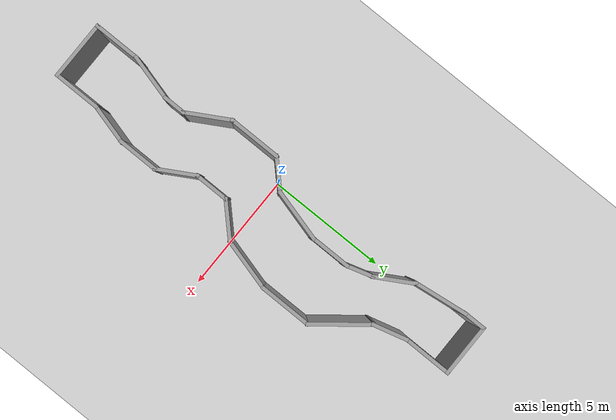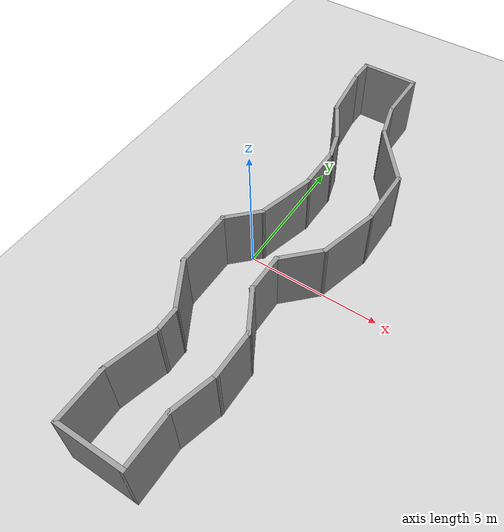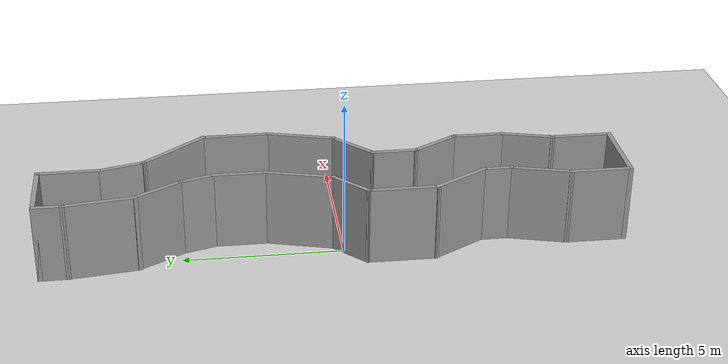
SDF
<sdf version="1.6">
 <world name="default">
  <light name="sun" type="directional">
   <pose>0 0 10 0 -0 0</pose>
   <diffuse>0.8 0.8 0.8 1</diffuse>
   <specular>0.2 0.2 0.2 1</specular>
   <attenuation>
    <range>1000</range>
    <constant>0.9</constant>
    <linear>0.01</linear>
    <quadratic>0.001</quadratic>
   </attenuation>
   <direction>-0.5 0.1 -0.9</direction>
  </light>
  <model name="ground_plane">
   <static>1</static>
   <link name="link">
    <collision name="collision">
     <geometry><plane><normal>0 0 1</normal><size>100 100</size></plane></geometry>
     <surface>
      <contact><collide_bitmask>65535</collide_bitmask></contact>
      <friction><ode><mu>100</mu><mu2>50</mu2></ode></friction>
     </surface>
    </collision>
    <visual name="visual">
     <cast_shadows>0</cast_shadows>
     <geometry><plane><normal>0 0 1</normal><size>100 100</size></plane></geometry>
     <material>
      <script><uri>file://media/materials/scripts/gazebo.material</uri><name>Gazebo/Grey</name></script>
     </material>
    </visual>
   </link>
  </model>
  <gravity>0 0 -9.8</gravity>
  <magnetic_field>6e-06 2.3e-05 -4.2e-05</magnetic_field>
  <atmosphere type="adiabatic"/>
  <physics name="default_physics" default="0" type="ode">
   <max_step_size>0.005</max_step_size>
   <real_time_factor>5</real_time_factor>
   <real_time_update_rate>5000</real_time_update_rate>
  </physics>
  <scene><ambient>0.4 0.4 0.4 1</ambient><background>0.7 0.7 0.7 1</background><shadows>1</shadows></scene>
  <audio><device>default</device></audio>
  <spherical_coordinates>
   <surface_model>EARTH_WGS84</surface_model>
   <latitude_deg>0</latitude_deg>
   <longitude_deg>0</longitude_deg>
   <elevation>0</elevation>
   <heading_deg>0</heading_deg>
  </spherical_coordinates>
  <model name="Untitled">
   <pose>1.35076 0.206749 0 0 -0 0</pose>
   <link name="Wall_0">
    <collision name="Wall_0_Collision">
     <geometry><box><size>2.5 0.15 2.5</size></box></geometry>
     <pose>0 0 1.25 0 -0 0</pose>
    </collision>
    <visual name="Wall_0_Visual">
     <pose>0 0 1.25 0 -0 0</pose>
     <geometry><box><size>2.5 0.15 2.5</size></box></geometry>
     <material>
      <script><uri>file://media/materials/scripts/gazebo.material</uri><name>Gazebo/Grey</name></script>
      <ambient>1 1 1 1</ambient>
     </material>
     <meta><layer>0</layer></meta>
    </visual>
    <pose>-0.42109 -9.06107 0 0 -0 0</pose>
   </link>
   <link name="Wall_10">
    <collision name="Wall_10_Collision">
     <geometry><box><size>1 0.15 2.5</size></box></geometry>
     <pose>0 0 1.25 0 -0 0</pose>
    </collision>
    <visual name="Wall_10_Visual">
     <pose>0 0 1.25 0 -0 0</pose>
     <geometry><box><size>1 0.15 2.5</size></box></geometry>
     <material>
      <script><uri>file://media/materials/scripts/gazebo.material</uri><name>Gazebo/Grey</name></script>
      <ambient>1 1 1 1</ambient>
     </material>
     <meta><layer>0</layer></meta>
    </visual>
    <pose>-1.11728 -4.99911 0 0 -0 1.5708</pose>
   </link>
   <link name="Wall_11">
    <collision name="Wall_11_Collision">
     <geometry><box><size>2 0.15 2.5</size></box></geometry>
     <pose>0 0 1.25 0 -0 0</pose>
    </collision>
    <visual name="Wall_11_Visual">
     <pose>0 0 1.25 0 -0 0</pose>
     <geometry><box><size>2 0.15 2.5</size></box></geometry>
     <material>
      <script><uri>file://media/materials/scripts/gazebo.material</uri><name>Gazebo/Grey</name></script>
      <ambient>1 1 1 1</ambient>
     </material>
     <meta><layer>0</layer></meta>
    </visual>
    <pose>-1.57977 -3.77304 0 0 -0 2.0944</pose>
   </link>
   <link name="Wall_12">
    <collision name="Wall_12_Collision">
     <geometry><box><size>2.25 0.15 2.5</size></box></geometry>
     <pose>0 0 1.25 0 -0 0</pose>
    </collision>
    <visual name="Wall_12_Visual">
     <pose>0 0 1.25 0 -0 0</pose>
     <geometry><box><size>2.25 0.15 2.5</size></box></geometry>
     <material>
      <script><uri>file://media/materials/scripts/gazebo.material</uri><name>Gazebo/Grey</name></script>
      <ambient>1 1 1 1</ambient>
     </material>
     <meta><layer>0</layer></meta>
    </visual>
    <pose>-2.04228 -1.92196 0 0 -0 1.5708</pose>
   </link>
   <link name="Wall_13">
    <collision name="Wall_13_Collision">
     <geometry><box><size>1.5 0.15 2.5</size></box></geometry>
     <pose>0 0 1.25 0 -0 0</pose>
    </collision>
    <visual name="Wall_13_Visual">
     <pose>0 0 1.25 0 -0 0</pose>
     <geometry><box><size>1.5 0.15 2.5</size></box></geometry>
     <material>
      <script><uri>file://media/materials/scripts/gazebo.material</uri><name>Gazebo/Grey</name></script>
      <ambient>1 1 1 1</ambient>
     </material>
     <meta><layer>0</layer></meta>
    </visual>
    <pose>-1.56498 -0.394667 0 0 -0 0.785398</pose>
   </link>
   <link name="Wall_15">
    <collision name="Wall_15_Collision">
     <geometry><box><size>1.5 0.15 2.5</size></box></geometry>
     <pose>0 0 1.25 0 -0 0</pose>
    </collision>
    <visual name="Wall_15_Visual">
     <pose>0 0 1.25 0 -0 0</pose>
     <geometry><box><size>1.5 0.15 2.5</size></box></geometry>
     <material>
      <script><uri>file://media/materials/scripts/gazebo.material</uri><name>Gazebo/Grey</name></script>
      <ambient>1 1 1 1</ambient>
     </material>
     <meta><layer>0</layer></meta>
    </visual>
    <pose>0.368021 -2.00495 0 0 -0 1.5708</pose>
   </link>
   <link name="Wall_16">
    <collision name="Wall_16_Collision">
     <geometry><box><size>1.75 0.15 2.5</size></box></geometry>
     <pose>0 0 1.25 0 -0 0</pose>
    </collision>
    <visual name="Wall_16_Visual">
     <pose>0 0 1.25 0 -0 0</pose>
     <geometry><box><size>1.75 0.15 2.5</size></box></geometry>
     <material>
      <script><uri>file://media/materials/scripts/gazebo.material</uri><name>Gazebo/Grey</name></script>
      <ambient>1 1 1 1</ambient>
     </material>
     <meta><layer>0</layer></meta>
    </visual>
    <pose>0.933706 -0.764267 0 0 -0 0.785398</pose>
   </link>
   <link name="Wall_17">
    <collision name="Wall_17_Collision">
     <geometry><box><size>2.25 0.15 2.5</size></box></geometry>
     <pose>0 0 1.25 0 -0 0</pose>
    </collision>
    <visual name="Wall_17_Visual">
     <pose>0 0 1.25 0 -0 0</pose>
     <geometry><box><size>2.25 0.15 2.5</size></box></geometry>
     <material>
      <script><uri>file://media/materials/scripts/gazebo.material</uri><name>Gazebo/Grey</name></script>
      <ambient>1 1 1 1</ambient>
     </material>
     <meta><layer>0</layer></meta>
    </visual>
    <pose>1.77115 0.815641 0 0 -0 1.309</pose>
   </link>
   <link name="Wall_19">
    <collision name="Wall_19_Collision">
     <geometry><box><size>2.25 0.15 2.5</size></box></geometry>
     <pose>0 0 1.25 0 -0 0</pose>
    </collision>
    <visual name="Wall_19_Visual">
     <pose>0 0 1.25 0 -0 0</pose>
     <geometry><box><size>2.25 0.15 2.5</size></box></geometry>
     <material>
      <script><uri>file://media/materials/scripts/gazebo.material</uri><name>Gazebo/Grey</name></script>
      <ambient>1 1 1 1</ambient>
     </material>
     <meta><layer>0</layer></meta>
    </visual>
    <pose>-0.815921 1.09685 0 0 -0 1.309</pose>
   </link>
   <link name="Wall_2">
    <collision name="Wall_2_Collision">
     <geometry><box><size>2 0.15 2.5</size></box></geometry>
     <pose>0 0 1.25 0 -0 0</pose>
    </collision>
    <visual name="Wall_2_Visual">
     <pose>0 0 1.25 0 -0 0</pose>
     <geometry><box><size>2 0.15 2.5</size></box></geometry>
     <material>
      <script><uri>file://media/materials/scripts/gazebo.material</uri><name>Gazebo/Grey</name></script>
      <ambient>1 1 1 1</ambient>
     </material>
     <meta><layer>0</layer></meta>
    </visual>
    <pose>-1.59609 -8.13607 0 0 -0 1.5708</pose>
   </link>
   <link name="Wall_20">
    <collision name="Wall_20_Collision">
     <geometry><box><size>1.75 0.15 2.5</size></box></geometry>
     <pose>0 0 1.25 0 -0 0</pose>
    </collision>
    <visual name="Wall_20_Visual">
     <pose>0 0 1.25 0 -0 0</pose>
     <geometry><box><size>1.75 0.15 2.5</size></box></geometry>
     <material>
      <script><uri>file://media/materials/scripts/gazebo.material</uri><name>Gazebo/Grey</name></script>
      <ambient>1 1 1 1</ambient>
     </material>
     <meta><layer>0</layer></meta>
    </visual>
    <pose>-0.544161 2.91107 0 0 -0 1.5708</pose>
   </link>
   <link name="Wall_21">
    <collision name="Wall_21_Collision">
     <geometry><box><size>1.19227 0.15 2.5</size></box></geometry>
     <pose>0 0 1.25 0 -0 0</pose>
    </collision>
    <visual name="Wall_21_Visual">
     <pose>0 0 1.25 0 -0 0</pose>
     <geometry><box><size>1.19227 0.15 2.5</size></box></geometry>
     <material>
      <script><uri>file://media/materials/scripts/gazebo.material</uri><name>Gazebo/Grey</name></script>
      <ambient>1 1 1 1</ambient>
     </material>
     <meta><layer>0</layer></meta>
    </visual>
    <pose>-0.692498 4.21065 0 0 -0 1.85943</pose>
   </link>
   <link name="Wall_23">
    <collision name="Wall_23_Collision">
     <geometry><box><size>2.25 0.15 2.5</size></box></geometry>
     <pose>0 0 1.25 0 -0 0</pose>
    </collision>
    <visual name="Wall_23_Visual">
     <pose>0 0 1.25 0 -0 0</pose>
     <geometry><box><size>2.25 0.15 2.5</size></box></geometry>
     <material>
      <script><uri>file://media/materials/scripts/gazebo.material</uri><name>Gazebo/Grey</name></script>
      <ambient>1 1 1 1</ambient>
     </material>
     <meta><layer>0</layer></meta>
    </visual>
    <pose>2.04291 2.87986 0 0 -0 1.5708</pose>
   </link>
   <link name="Wall_24">
    <collision name="Wall_24_Collision">
     <geometry><box><size>2.57949 0.15 2.5</size></box></geometry>
     <pose>0 0 1.25 0 -0 0</pose>
    </collision>
    <visual name="Wall_24_Visual">
     <pose>0 0 1.25 0 -0 0</pose>
     <geometry><box><size>2.57949 0.15 2.5</size></box></geometry>
     <material>
      <script><uri>file://media/materials/scripts/gazebo.material</uri><name>Gazebo/Grey</name></script>
      <ambient>1 1 1 1</ambient>
     </material>
     <meta><layer>0</layer></meta>
    </visual>
    <pose>1.28312 4.87766 0 0 -0 2.24653</pose>
   </link>
   <link name="Wall_25">
    <collision name="Wall_25_Collision">
     <geometry><box><size>1.5 0.15 2.5</size></box></geometry>
     <pose>0 0 1.25 0 -0 0</pose>
    </collision>
    <visual name="Wall_25_Visual">
     <pose>0 0 1.25 0 -0 0</pose>
     <geometry><box><size>1.5 0.15 2.5</size></box></geometry>
     <material>
      <script><uri>file://media/materials/scripts/gazebo.material</uri><name>Gazebo/Grey</name></script>
      <ambient>1 1 1 1</ambient>
     </material>
     <meta><layer>0</layer></meta>
    </visual>
    <pose>0.348632 6.47746 0 0 -0 1.8326</pose>
   </link>
   <link name="Wall_27">
    <collision name="Wall_27_Collision">
     <geometry><box><size>1.75 0.15 2.5</size></box></geometry>
     <pose>0 0 1.25 0 -0 0</pose>
    </collision>
    <visual name="Wall_27_Visual">
     <pose>0 0 1.25 0 -0 0</pose>
     <geometry><box><size>1.75 0.15 2.5</size></box></geometry>
     <material>
      <script><uri>file://media/materials/scripts/gazebo.material</uri><name>Gazebo/Grey</name></script>
      <ambient>1 1 1 1</ambient>
     </material>
     <meta><layer>0</layer></meta>
    </visual>
    <pose>-1.24083 5.40304 0 0 -0 2.0944</pose>
   </link>
   <link name="Wall_28">
    <collision name="Wall_28_Collision">
     <geometry><box><size>2.29793 0.15 2.5</size></box></geometry>
     <pose>0 0 1.25 0 -0 0</pose>
    </collision>
    <visual name="Wall_28_Visual">
     <pose>0 0 1.25 0 -0 0</pose>
     <geometry><box><size>2.29793 0.15 2.5</size></box></geometry>
     <material>
      <script><uri>file://media/materials/scripts/gazebo.material</uri><name>Gazebo/Grey</name></script>
      <ambient>1 1 1 1</ambient>
     </material>
     <meta><layer>0</layer></meta>
    </visual>
    <pose>-1.79292 7.14586 0 0 -0 1.6986</pose>
   </link>
   <link name="Wall_29">
    <collision name="Wall_29_Collision">
     <geometry><box><size>1 0.15 2.5</size></box></geometry>
     <pose>0 0 1.25 0 -0 0</pose>
    </collision>
    <visual name="Wall_29_Visual">
     <pose>0 0 1.25 0 -0 0</pose>
     <geometry><box><size>1 0.15 2.5</size></box></geometry>
     <material>
      <script><uri>file://media/materials/scripts/gazebo.material</uri><name>Gazebo/Grey</name></script>
      <ambient>1 1 1 1</ambient>
     </material>
     <meta><layer>0</layer></meta>
    </visual>
    <pose>-1.9298 8.63607 0 0 -0 1.5708</pose>
   </link>
   <link name="Wall_3">
    <collision name="Wall_3_Collision">
     <geometry><box><size>2 0.15 2.5</size></box></geometry>
     <pose>0 0 1.25 0 -0 0</pose>
    </collision>
    <visual name="Wall_3_Visual">
     <pose>0 0 1.25 0 -0 0</pose>
     <geometry><box><size>2 0.15 2.5</size></box></geometry>
     <material>
      <script><uri>file://media/materials/scripts/gazebo.material</uri><name>Gazebo/Grey</name></script>
      <ambient>1 1 1 1</ambient>
     </material>
     <meta><layer>0</layer></meta>
    </visual>
    <pose>-1.35668 -6.31759 0 0 -0 1.309</pose>
   </link>
   <link name="Wall_30">
    <collision name="Wall_30_Collision">
     <geometry><box><size>2.25 0.15 2.5</size></box></geometry>
     <pose>0 0 1.25 0 -0 0</pose>
    </collision>
    <visual name="Wall_30_Visual">
     <pose>0 0 1.25 0 -0 0</pose>
     <geometry><box><size>2.25 0.15 2.5</size></box></geometry>
     <material>
      <script><uri>file://media/materials/scripts/gazebo.material</uri><name>Gazebo/Grey</name></script>
      <ambient>1 1 1 1</ambient>
     </material>
     <meta><layer>0</layer></meta>
    </visual>
    <pose>-0.879801 9.06107 0 0 -0 0</pose>
   </link>
   <link name="Wall_31">
    <collision name="Wall_31_Collision">
     <geometry><box><size>2 0.15 2.5</size></box></geometry>
     <pose>0 0 1.25 0 -0 0</pose>
    </collision>
    <visual name="Wall_31_Visual">
     <pose>0 0 1.25 0 -0 0</pose>
     <geometry><box><size>2 0.15 2.5</size></box></geometry>
     <material>
      <script><uri>file://media/materials/scripts/gazebo.material</uri><name>Gazebo/Grey</name></script>
      <ambient>1 1 1 1</ambient>
     </material>
     <meta><layer>0</layer></meta>
    </visual>
    <pose>0.170199 8.13607 0 0 -0 -1.5708</pose>
   </link>
   <link name="Wall_5">
    <collision name="Wall_5_Collision">
     <geometry><box><size>2 0.15 2.5</size></box></geometry>
     <pose>0 0 1.25 0 -0 0</pose>
    </collision>
    <visual name="Wall_5_Visual">
     <pose>0 0 1.25 0 -0 0</pose>
     <geometry><box><size>2 0.15 2.5</size></box></geometry>
     <material>
      <script><uri>file://media/materials/scripts/gazebo.material</uri><name>Gazebo/Grey</name></script>
      <ambient>1 1 1 1</ambient>
     </material>
     <meta><layer>0</layer></meta>
    </visual>
    <pose>0.75391 -8.13607 0 0 -0 1.5708</pose>
   </link>
   <link name="Wall_6">
    <collision name="Wall_6_Collision">
     <geometry><box><size>1.75 0.15 2.5</size></box></geometry>
     <pose>0 0 1.25 0 -0 0</pose>
    </collision>
    <visual name="Wall_6_Visual">
     <pose>0 0 1.25 0 -0 0</pose>
     <geometry><box><size>1.75 0.15 2.5</size></box></geometry>
     <material>
      <script><uri>file://media/materials/scripts/gazebo.material</uri><name>Gazebo/Grey</name></script>
      <ambient>1 1 1 1</ambient>
     </material>
     <meta><layer>0</layer></meta>
    </visual>
    <pose>0.960965 -6.43833 0 0 -0 1.309</pose>
   </link>
   <link name="Wall_7">
    <collision name="Wall_7_Collision">
     <geometry><box><size>1.75 0.15 2.5</size></box></geometry>
     <pose>0 0 1.25 0 -0 0</pose>
    </collision>
    <visual name="Wall_7_Visual">
     <pose>0 0 1.25 0 -0 0</pose>
     <geometry><box><size>1.75 0.15 2.5</size></box></geometry>
     <material>
      <script><uri>file://media/materials/scripts/gazebo.material</uri><name>Gazebo/Grey</name></script>
      <ambient>1 1 1 1</ambient>
     </material>
     <meta><layer>0</layer></meta>
    </visual>
    <pose>1.16802 -4.86559 0 0 -0 1.5708</pose>
   </link>
   <link name="Wall_8">
    <collision name="Wall_8_Collision">
     <geometry><box><size>1.75 0.15 2.5</size></box></geometry>
     <pose>0 0 1.25 0 -0 0</pose>
    </collision>
    <visual name="Wall_8_Visual">
     <pose>0 0 1.25 0 -0 0</pose>
     <geometry><box><size>1.75 0.15 2.5</size></box></geometry>
     <material>
      <script><uri>file://media/materials/scripts/gazebo.material</uri><name>Gazebo/Grey</name></script>
      <ambient>1 1 1 1</ambient>
     </material>
     <meta><layer>0</layer></meta>
    </visual>
    <pose>0.768021 -3.37277 0 0 -0 2.0944</pose>
   </link>
   <static>1</static>
  </model>
 </world>
</sdf>
